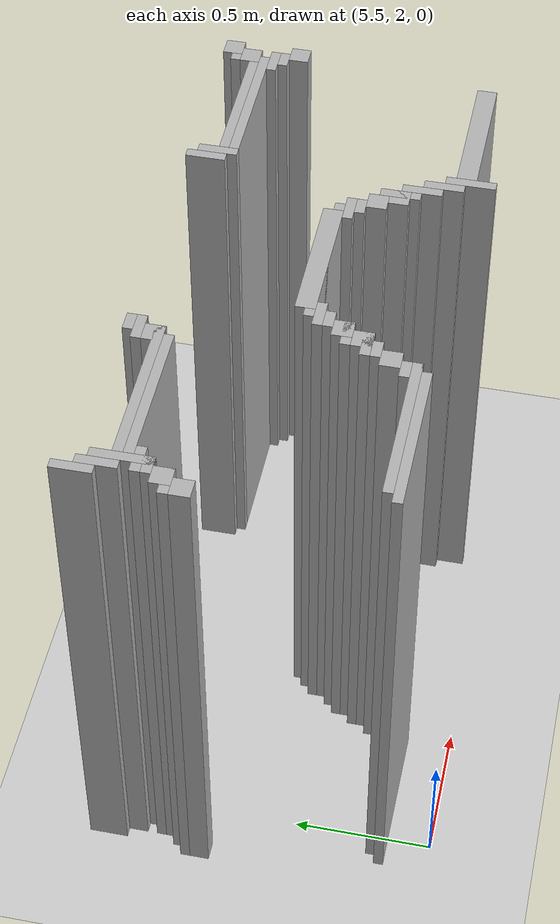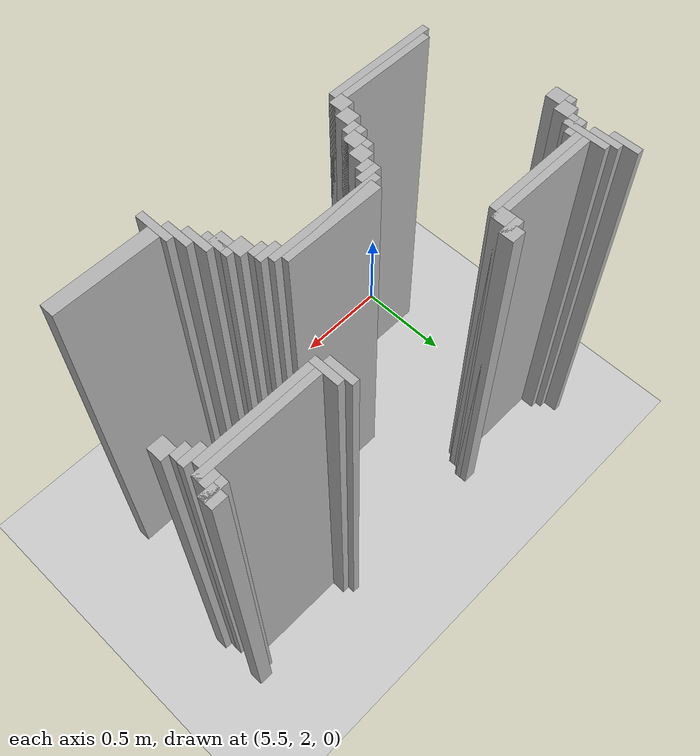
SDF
<sdf version="1.6">
 <world name="slam_world">
  <model name="ground_plane">
   <static>true</static>
   <link name="link">
    <collision name="collision">
     <geometry><plane><normal>0 0 1</normal><size>100 100</size></plane></geometry>
    </collision>
    <visual name="visual">
     <geometry><plane><normal>0 0 1</normal><size>100 100</size></plane></geometry>
     <material>
      <ambient>0.8 0.8 0.8 1</ambient>
      <diffuse>0.8 0.8 0.8 1</diffuse>
      <specular>0.8 0.8 0.8 1</specular>
     </material>
    </visual>
   </link>
  </model>
  <model name="wall_4689">
   <static>true</static>
   <pose>5.342227378190255 3.167053364269141 1.0 0 0 0</pose>
   <link name="link">
    <collision name="collision">
     <geometry><box><size>0.03480278422273782 0.13921113689095127 2.0</size></box></geometry>
    </collision>
    <visual name="visual">
     <geometry><box><size>0.03480278422273782 0.13921113689095127 2.0</size></box></geometry>
     <material><ambient>0.5 0.5 0.5 1</ambient><diffuse>0.7 0.7 0.7 1</diffuse></material>
    </visual>
   </link>
  </model>
  <model name="wall_4706">
   <static>true</static>
   <pose>5.377030162412993 3.097447795823666 1.0 0 0 0</pose>
   <link name="link">
    <collision name="collision">
     <geometry><box><size>0.03480278422273782 0.13921113689095127 2.0</size></box></geometry>
    </collision>
    <visual name="visual">
     <geometry><box><size>0.03480278422273782 0.13921113689095127 2.0</size></box></geometry>
     <material><ambient>0.5 0.5 0.5 1</ambient><diffuse>0.7 0.7 0.7 1</diffuse></material>
    </visual>
   </link>
  </model>
  <model name="wall_4707">
   <static>true</static>
   <pose>5.986078886310905 3.1322505800464038 1.0 0 0 0</pose>
   <link name="link">
    <collision name="collision">
     <geometry><box><size>0.06960556844547564 0.06960556844547564 2.0</size></box></geometry>
    </collision>
    <visual name="visual">
     <geometry><box><size>0.06960556844547564 0.06960556844547564 2.0</size></box></geometry>
     <material><ambient>0.5 0.5 0.5 1</ambient><diffuse>0.7 0.7 0.7 1</diffuse></material>
    </visual>
   </link>
  </model>
  <model name="wall_4708">
   <static>true</static>
   <pose>6.838747099767981 3.097447795823666 1.0 0 0 0</pose>
   <link name="link">
    <collision name="collision">
     <geometry><box><size>0.03480278422273782 0.13921113689095127 2.0</size></box></geometry>
    </collision>
    <visual name="visual">
     <geometry><box><size>0.03480278422273782 0.13921113689095127 2.0</size></box></geometry>
     <material><ambient>0.5 0.5 0.5 1</ambient><diffuse>0.7 0.7 0.7 1</diffuse></material>
    </visual>
   </link>
  </model>
  <model name="wall_4709">
   <static>true</static>
   <pose>7.447795823665893 3.1322505800464038 1.0 0 0 0</pose>
   <link name="link">
    <collision name="collision">
     <geometry><box><size>0.06960556844547564 0.06960556844547564 2.0</size></box></geometry>
    </collision>
    <visual name="visual">
     <geometry><box><size>0.06960556844547564 0.06960556844547564 2.0</size></box></geometry>
     <material><ambient>0.5 0.5 0.5 1</ambient><diffuse>0.7 0.7 0.7 1</diffuse></material>
    </visual>
   </link>
  </model>
  <model name="wall_4723">
   <static>true</static>
   <pose>5.41183294663573 3.02784222737819 1.0 0 0 0</pose>
   <link name="link">
    <collision name="collision">
     <geometry><box><size>0.03480278422273782 0.2088167053364269 2.0</size></box></geometry>
    </collision>
    <visual name="visual">
     <geometry><box><size>0.03480278422273782 0.2088167053364269 2.0</size></box></geometry>
     <material><ambient>0.5 0.5 0.5 1</ambient><diffuse>0.7 0.7 0.7 1</diffuse></material>
    </visual>
   </link>
  </model>
  <model name="wall_4724">
   <static>true</static>
   <pose>5.968677494199536 3.1148491879350346 1.0 0 0 0</pose>
   <link name="link">
    <collision name="collision">
     <geometry><box><size>0.10440835266821345 0.03480278422273782 2.0</size></box></geometry>
    </collision>
    <visual name="visual">
     <geometry><box><size>0.10440835266821345 0.03480278422273782 2.0</size></box></geometry>
     <material><ambient>0.5 0.5 0.5 1</ambient><diffuse>0.7 0.7 0.7 1</diffuse></material>
    </visual>
   </link>
  </model>
  <model name="wall_4725">
   <static>true</static>
   <pose>6.8735498839907185 3.062645011600928 1.0 0 0 0</pose>
   <link name="link">
    <collision name="collision">
     <geometry><box><size>0.03480278422273782 0.13921113689095127 2.0</size></box></geometry>
    </collision>
    <visual name="visual">
     <geometry><box><size>0.03480278422273782 0.13921113689095127 2.0</size></box></geometry>
     <material><ambient>0.5 0.5 0.5 1</ambient><diffuse>0.7 0.7 0.7 1</diffuse></material>
    </visual>
   </link>
  </model>
  <model name="wall_4726">
   <static>true</static>
   <pose>7.430394431554524 3.1148491879350346 1.0 0 0 0</pose>
   <link name="link">
    <collision name="collision">
     <geometry><box><size>0.10440835266821345 0.03480278422273782 2.0</size></box></geometry>
    </collision>
    <visual name="visual">
     <geometry><box><size>0.10440835266821345 0.03480278422273782 2.0</size></box></geometry>
     <material><ambient>0.5 0.5 0.5 1</ambient><diffuse>0.7 0.7 0.7 1</diffuse></material>
    </visual>
   </link>
  </model>
  <model name="wall_4737">
   <static>true</static>
   <pose>5.951276102088166 3.062645011600928 1.0 0 0 0</pose>
   <link name="link">
    <collision name="collision">
     <geometry><box><size>0.06960556844547564 0.06960556844547564 2.0</size></box></geometry>
    </collision>
    <visual name="visual">
     <geometry><box><size>0.06960556844547564 0.06960556844547564 2.0</size></box></geometry>
     <material><ambient>0.5 0.5 0.5 1</ambient><diffuse>0.7 0.7 0.7 1</diffuse></material>
    </visual>
   </link>
  </model>
  <model name="wall_4738">
   <static>true</static>
   <pose>7.412993039443156 3.062645011600928 1.0 0 0 0</pose>
   <link name="link">
    <collision name="collision">
     <geometry><box><size>0.06960556844547564 0.06960556844547564 2.0</size></box></geometry>
    </collision>
    <visual name="visual">
     <geometry><box><size>0.06960556844547564 0.06960556844547564 2.0</size></box></geometry>
     <material><ambient>0.5 0.5 0.5 1</ambient><diffuse>0.7 0.7 0.7 1</diffuse></material>
    </visual>
   </link>
  </model>
  <model name="wall_4747">
   <static>true</static>
   <pose>5.707656612529002 3.045243619489559 1.0 0 0 0</pose>
   <link name="link">
    <collision name="collision">
     <geometry><box><size>0.5568445475638051 0.03480278422273782 2.0</size></box></geometry>
    </collision>
    <visual name="visual">
     <geometry><box><size>0.5568445475638051 0.03480278422273782 2.0</size></box></geometry>
     <material><ambient>0.5 0.5 0.5 1</ambient><diffuse>0.7 0.7 0.7 1</diffuse></material>
    </visual>
   </link>
  </model>
  <model name="wall_4748">
   <static>true</static>
   <pose>7.16937354988399 3.045243619489559 1.0 0 0 0</pose>
   <link name="link">
    <collision name="collision">
     <geometry><box><size>0.5568445475638051 0.03480278422273782 2.0</size></box></geometry>
    </collision>
    <visual name="visual">
     <geometry><box><size>0.5568445475638051 0.03480278422273782 2.0</size></box></geometry>
     <material><ambient>0.5 0.5 0.5 1</ambient><diffuse>0.7 0.7 0.7 1</diffuse></material>
    </visual>
   </link>
  </model>
  <model name="wall_4758">
   <static>true</static>
   <pose>5.690255220417633 3.010440835266821 1.0 0 0 0</pose>
   <link name="link">
    <collision name="collision">
     <geometry><box><size>0.5220417633410672 0.03480278422273782 2.0</size></box></geometry>
    </collision>
    <visual name="visual">
     <geometry><box><size>0.5220417633410672 0.03480278422273782 2.0</size></box></geometry>
     <material><ambient>0.5 0.5 0.5 1</ambient><diffuse>0.7 0.7 0.7 1</diffuse></material>
    </visual>
   </link>
  </model>
  <model name="wall_4759">
   <static>true</static>
   <pose>7.151972157772621 3.010440835266821 1.0 0 0 0</pose>
   <link name="link">
    <collision name="collision">
     <geometry><box><size>0.5220417633410672 0.03480278422273782 2.0</size></box></geometry>
    </collision>
    <visual name="visual">
     <geometry><box><size>0.5220417633410672 0.03480278422273782 2.0</size></box></geometry>
     <material><ambient>0.5 0.5 0.5 1</ambient><diffuse>0.7 0.7 0.7 1</diffuse></material>
    </visual>
   </link>
  </model>
  <model name="wall_4767">
   <static>true</static>
   <pose>5.41183294663573 2.975638051044083 1.0 0 0 0</pose>
   <link name="link">
    <collision name="collision">
     <geometry><box><size>0.10440835266821345 0.03480278422273782 2.0</size></box></geometry>
    </collision>
    <visual name="visual">
     <geometry><box><size>0.10440835266821345 0.03480278422273782 2.0</size></box></geometry>
     <material><ambient>0.5 0.5 0.5 1</ambient><diffuse>0.7 0.7 0.7 1</diffuse></material>
    </visual>
   </link>
  </model>
  <model name="wall_4768">
   <static>true</static>
   <pose>7.395591647331786 2.975638051044083 1.0 0 0 0</pose>
   <link name="link">
    <collision name="collision">
     <geometry><box><size>0.10440835266821345 0.03480278422273782 2.0</size></box></geometry>
    </collision>
    <visual name="visual">
     <geometry><box><size>0.10440835266821345 0.03480278422273782 2.0</size></box></geometry>
     <material><ambient>0.5 0.5 0.5 1</ambient><diffuse>0.7 0.7 0.7 1</diffuse></material>
    </visual>
   </link>
  </model>
  <model name="wall_4778">
   <static>true</static>
   <pose>5.3944315545243615 2.9408352668213458 1.0 0 0 0</pose>
   <link name="link">
    <collision name="collision">
     <geometry><box><size>0.06960556844547564 0.03480278422273782 2.0</size></box></geometry>
    </collision>
    <visual name="visual">
     <geometry><box><size>0.06960556844547564 0.03480278422273782 2.0</size></box></geometry>
     <material><ambient>0.5 0.5 0.5 1</ambient><diffuse>0.7 0.7 0.7 1</diffuse></material>
    </visual>
   </link>
  </model>
  <model name="wall_4779">
   <static>true</static>
   <pose>7.412993039443156 2.9408352668213458 1.0 0 0 0</pose>
   <link name="link">
    <collision name="collision">
     <geometry><box><size>0.06960556844547564 0.03480278422273782 2.0</size></box></geometry>
    </collision>
    <visual name="visual">
     <geometry><box><size>0.06960556844547564 0.03480278422273782 2.0</size></box></geometry>
     <material><ambient>0.5 0.5 0.5 1</ambient><diffuse>0.7 0.7 0.7 1</diffuse></material>
    </visual>
   </link>
  </model>
  <model name="wall_4787">
   <static>true</static>
   <pose>5.359628770301624 2.8886310904872388 1.0 0 0 0</pose>
   <link name="link">
    <collision name="collision">
     <geometry><box><size>0.06960556844547564 0.06960556844547564 2.0</size></box></geometry>
    </collision>
    <visual name="visual">
     <geometry><box><size>0.06960556844547564 0.06960556844547564 2.0</size></box></geometry>
     <material><ambient>0.5 0.5 0.5 1</ambient><diffuse>0.7 0.7 0.7 1</diffuse></material>
    </visual>
   </link>
  </model>
  <model name="wall_4788">
   <static>true</static>
   <pose>7.447795823665893 2.8886310904872388 1.0 0 0 0</pose>
   <link name="link">
    <collision name="collision">
     <geometry><box><size>0.06960556844547564 0.06960556844547564 2.0</size></box></geometry>
    </collision>
    <visual name="visual">
     <geometry><box><size>0.06960556844547564 0.06960556844547564 2.0</size></box></geometry>
     <material><ambient>0.5 0.5 0.5 1</ambient><diffuse>0.7 0.7 0.7 1</diffuse></material>
    </visual>
   </link>
  </model>
  <model name="wall_4800">
   <static>true</static>
   <pose>5.342227378190255 2.87122969837587 1.0 0 0 0</pose>
   <link name="link">
    <collision name="collision">
     <geometry><box><size>0.10440835266821345 0.03480278422273782 2.0</size></box></geometry>
    </collision>
    <visual name="visual">
     <geometry><box><size>0.10440835266821345 0.03480278422273782 2.0</size></box></geometry>
     <material><ambient>0.5 0.5 0.5 1</ambient><diffuse>0.7 0.7 0.7 1</diffuse></material>
    </visual>
   </link>
  </model>
  <model name="wall_4813">
   <static>true</static>
   <pose>5.324825986078886 2.819025522041763 1.0 0 0 0</pose>
   <link name="link">
    <collision name="collision">
     <geometry><box><size>0.06960556844547564 0.06960556844547564 2.0</size></box></geometry>
    </collision>
    <visual name="visual">
     <geometry><box><size>0.06960556844547564 0.06960556844547564 2.0</size></box></geometry>
     <material><ambient>0.5 0.5 0.5 1</ambient><diffuse>0.7 0.7 0.7 1</diffuse></material>
    </visual>
   </link>
  </model>
  <model name="wall_4874">
   <static>true</static>
   <pose>6.403712296983758 2.6102088167053363 1.0 0 0 0</pose>
   <link name="link">
    <collision name="collision">
     <geometry><box><size>0.4872389791183295 0.06960556844547564 2.0</size></box></geometry>
    </collision>
    <visual name="visual">
     <geometry><box><size>0.4872389791183295 0.06960556844547564 2.0</size></box></geometry>
     <material><ambient>0.5 0.5 0.5 1</ambient><diffuse>0.7 0.7 0.7 1</diffuse></material>
    </visual>
   </link>
  </model>
  <model name="wall_4889">
   <static>true</static>
   <pose>6.403712296983758 2.5928074245939676 1.0 0 0 0</pose>
   <link name="link">
    <collision name="collision">
     <geometry><box><size>0.5568445475638051 0.03480278422273782 2.0</size></box></geometry>
    </collision>
    <visual name="visual">
     <geometry><box><size>0.5568445475638051 0.03480278422273782 2.0</size></box></geometry>
     <material><ambient>0.5 0.5 0.5 1</ambient><diffuse>0.7 0.7 0.7 1</diffuse></material>
    </visual>
   </link>
  </model>
  <model name="wall_4902">
   <static>true</static>
   <pose>6.142691415313225 2.5580046403712298 1.0 0 0 0</pose>
   <link name="link">
    <collision name="collision">
     <geometry><box><size>0.10440835266821345 0.03480278422273782 2.0</size></box></geometry>
    </collision>
    <visual name="visual">
     <geometry><box><size>0.10440835266821345 0.03480278422273782 2.0</size></box></geometry>
     <material><ambient>0.5 0.5 0.5 1</ambient><diffuse>0.7 0.7 0.7 1</diffuse></material>
    </visual>
   </link>
  </model>
  <model name="wall_4903">
   <static>true</static>
   <pose>6.664733178654292 2.5580046403712298 1.0 0 0 0</pose>
   <link name="link">
    <collision name="collision">
     <geometry><box><size>0.10440835266821345 0.03480278422273782 2.0</size></box></geometry>
    </collision>
    <visual name="visual">
     <geometry><box><size>0.10440835266821345 0.03480278422273782 2.0</size></box></geometry>
     <material><ambient>0.5 0.5 0.5 1</ambient><diffuse>0.7 0.7 0.7 1</diffuse></material>
    </visual>
   </link>
  </model>
  <model name="wall_4917">
   <static>true</static>
   <pose>6.125290023201856 2.523201856148492 1.0 0 0 0</pose>
   <link name="link">
    <collision name="collision">
     <geometry><box><size>0.06960556844547564 0.03480278422273782 2.0</size></box></geometry>
    </collision>
    <visual name="visual">
     <geometry><box><size>0.06960556844547564 0.03480278422273782 2.0</size></box></geometry>
     <material><ambient>0.5 0.5 0.5 1</ambient><diffuse>0.7 0.7 0.7 1</diffuse></material>
    </visual>
   </link>
  </model>
  <model name="wall_4918">
   <static>true</static>
   <pose>6.682134570765661 2.523201856148492 1.0 0 0 0</pose>
   <link name="link">
    <collision name="collision">
     <geometry><box><size>0.06960556844547564 0.03480278422273782 2.0</size></box></geometry>
    </collision>
    <visual name="visual">
     <geometry><box><size>0.06960556844547564 0.03480278422273782 2.0</size></box></geometry>
     <material><ambient>0.5 0.5 0.5 1</ambient><diffuse>0.7 0.7 0.7 1</diffuse></material>
    </visual>
   </link>
  </model>
  <model name="wall_4929">
   <static>true</static>
   <pose>6.090487238979118 2.470997679814385 1.0 0 0 0</pose>
   <link name="link">
    <collision name="collision">
     <geometry><box><size>0.06960556844547564 0.06960556844547564 2.0</size></box></geometry>
    </collision>
    <visual name="visual">
     <geometry><box><size>0.06960556844547564 0.06960556844547564 2.0</size></box></geometry>
     <material><ambient>0.5 0.5 0.5 1</ambient><diffuse>0.7 0.7 0.7 1</diffuse></material>
    </visual>
   </link>
  </model>
  <model name="wall_4930">
   <static>true</static>
   <pose>6.716937354988398 2.470997679814385 1.0 0 0 0</pose>
   <link name="link">
    <collision name="collision">
     <geometry><box><size>0.06960556844547564 0.06960556844547564 2.0</size></box></geometry>
    </collision>
    <visual name="visual">
     <geometry><box><size>0.06960556844547564 0.06960556844547564 2.0</size></box></geometry>
     <material><ambient>0.5 0.5 0.5 1</ambient><diffuse>0.7 0.7 0.7 1</diffuse></material>
    </visual>
   </link>
  </model>
  <model name="wall_4946">
   <static>true</static>
   <pose>6.073085846867749 2.453596287703016 1.0 0 0 0</pose>
   <link name="link">
    <collision name="collision">
     <geometry><box><size>0.10440835266821345 0.03480278422273782 2.0</size></box></geometry>
    </collision>
    <visual name="visual">
     <geometry><box><size>0.10440835266821345 0.03480278422273782 2.0</size></box></geometry>
     <material><ambient>0.5 0.5 0.5 1</ambient><diffuse>0.7 0.7 0.7 1</diffuse></material>
    </visual>
   </link>
  </model>
  <model name="wall_4947">
   <static>true</static>
   <pose>6.769141531322505 2.4013921113689096 1.0 0 0 0</pose>
   <link name="link">
    <collision name="collision">
     <geometry><box><size>0.03480278422273782 0.13921113689095127 2.0</size></box></geometry>
    </collision>
    <visual name="visual">
     <geometry><box><size>0.03480278422273782 0.13921113689095127 2.0</size></box></geometry>
     <material><ambient>0.5 0.5 0.5 1</ambient><diffuse>0.7 0.7 0.7 1</diffuse></material>
    </visual>
   </link>
  </model>
  <model name="wall_4961">
   <static>true</static>
   <pose>6.05568445475638 2.4013921113689096 1.0 0 0 0</pose>
   <link name="link">
    <collision name="collision">
     <geometry><box><size>0.06960556844547564 0.06960556844547564 2.0</size></box></geometry>
    </collision>
    <visual name="visual">
     <geometry><box><size>0.06960556844547564 0.06960556844547564 2.0</size></box></geometry>
     <material><ambient>0.5 0.5 0.5 1</ambient><diffuse>0.7 0.7 0.7 1</diffuse></material>
    </visual>
   </link>
  </model>
  <model name="wall_4962">
   <static>true</static>
   <pose>6.751740139211137 2.4013921113689096 1.0 0 0 0</pose>
   <link name="link">
    <collision name="collision">
     <geometry><box><size>0.06960556844547564 0.06960556844547564 2.0</size></box></geometry>
    </collision>
    <visual name="visual">
     <geometry><box><size>0.06960556844547564 0.06960556844547564 2.0</size></box></geometry>
     <material><ambient>0.5 0.5 0.5 1</ambient><diffuse>0.7 0.7 0.7 1</diffuse></material>
    </visual>
   </link>
  </model>
  <model name="wall_4977">
   <static>true</static>
   <pose>6.038283062645012 2.3839907192575405 1.0 0 0 0</pose>
   <link name="link">
    <collision name="collision">
     <geometry><box><size>0.10440835266821345 0.03480278422273782 2.0</size></box></geometry>
    </collision>
    <visual name="visual">
     <geometry><box><size>0.10440835266821345 0.03480278422273782 2.0</size></box></geometry>
     <material><ambient>0.5 0.5 0.5 1</ambient><diffuse>0.7 0.7 0.7 1</diffuse></material>
    </visual>
   </link>
  </model>
  <model name="wall_4978">
   <static>true</static>
   <pose>6.803944315545244 2.331786542923434 1.0 0 0 0</pose>
   <link name="link">
    <collision name="collision">
     <geometry><box><size>0.03480278422273782 0.13921113689095127 2.0</size></box></geometry>
    </collision>
    <visual name="visual">
     <geometry><box><size>0.03480278422273782 0.13921113689095127 2.0</size></box></geometry>
     <material><ambient>0.5 0.5 0.5 1</ambient><diffuse>0.7 0.7 0.7 1</diffuse></material>
    </visual>
   </link>
  </model>
  <model name="wall_4991">
   <static>true</static>
   <pose>6.020881670533642 2.3491879350348026 1.0 0 0 0</pose>
   <link name="link">
    <collision name="collision">
     <geometry><box><size>0.06960556844547564 0.03480278422273782 2.0</size></box></geometry>
    </collision>
    <visual name="visual">
     <geometry><box><size>0.06960556844547564 0.03480278422273782 2.0</size></box></geometry>
     <material><ambient>0.5 0.5 0.5 1</ambient><diffuse>0.7 0.7 0.7 1</diffuse></material>
    </visual>
   </link>
  </model>
  <model name="wall_5003">
   <static>true</static>
   <pose>5.986078886310905 2.296983758700696 1.0 0 0 0</pose>
   <link name="link">
    <collision name="collision">
     <geometry><box><size>0.06960556844547564 0.06960556844547564 2.0</size></box></geometry>
    </collision>
    <visual name="visual">
     <geometry><box><size>0.06960556844547564 0.06960556844547564 2.0</size></box></geometry>
     <material><ambient>0.5 0.5 0.5 1</ambient><diffuse>0.7 0.7 0.7 1</diffuse></material>
    </visual>
   </link>
  </model>
  <model name="wall_5004">
   <static>true</static>
   <pose>6.838747099767981 2.262180974477958 1.0 0 0 0</pose>
   <link name="link">
    <collision name="collision">
     <geometry><box><size>0.03480278422273782 0.13921113689095127 2.0</size></box></geometry>
    </collision>
    <visual name="visual">
     <geometry><box><size>0.03480278422273782 0.13921113689095127 2.0</size></box></geometry>
     <material><ambient>0.5 0.5 0.5 1</ambient><diffuse>0.7 0.7 0.7 1</diffuse></material>
    </visual>
   </link>
  </model>
  <model name="wall_5020">
   <static>true</static>
   <pose>5.951276102088166 2.2273781902552203 1.0 0 0 0</pose>
   <link name="link">
    <collision name="collision">
     <geometry><box><size>0.06960556844547564 0.06960556844547564 2.0</size></box></geometry>
    </collision>
    <visual name="visual">
     <geometry><box><size>0.06960556844547564 0.06960556844547564 2.0</size></box></geometry>
     <material><ambient>0.5 0.5 0.5 1</ambient><diffuse>0.7 0.7 0.7 1</diffuse></material>
    </visual>
   </link>
  </model>
  <model name="wall_5021">
   <static>true</static>
   <pose>6.8735498839907185 2.1751740139211138 1.0 0 0 0</pose>
   <link name="link">
    <collision name="collision">
     <geometry><box><size>0.03480278422273782 0.17401392111368907 2.0</size></box></geometry>
    </collision>
    <visual name="visual">
     <geometry><box><size>0.03480278422273782 0.17401392111368907 2.0</size></box></geometry>
     <material><ambient>0.5 0.5 0.5 1</ambient><diffuse>0.7 0.7 0.7 1</diffuse></material>
    </visual>
   </link>
  </model>
  <model name="wall_5037">
   <static>true</static>
   <pose>5.707656612529002 2.2099767981438516 1.0 0 0 0</pose>
   <link name="link">
    <collision name="collision">
     <geometry><box><size>0.5568445475638051 0.03480278422273782 2.0</size></box></geometry>
    </collision>
    <visual name="visual">
     <geometry><box><size>0.5568445475638051 0.03480278422273782 2.0</size></box></geometry>
     <material><ambient>0.5 0.5 0.5 1</ambient><diffuse>0.7 0.7 0.7 1</diffuse></material>
    </visual>
   </link>
  </model>
  <model name="wall_5038">
   <static>true</static>
   <pose>7.134570765661253 2.1925754060324825 1.0 0 0 0</pose>
   <link name="link">
    <collision name="collision">
     <geometry><box><size>0.4872389791183295 0.06960556844547564 2.0</size></box></geometry>
    </collision>
    <visual name="visual">
     <geometry><box><size>0.4872389791183295 0.06960556844547564 2.0</size></box></geometry>
     <material><ambient>0.5 0.5 0.5 1</ambient><diffuse>0.7 0.7 0.7 1</diffuse></material>
    </visual>
   </link>
  </model>
  <model name="wall_5049">
   <static>true</static>
   <pose>5.672853828306264 2.1751740139211138 1.0 0 0 0</pose>
   <link name="link">
    <collision name="collision">
     <geometry><box><size>0.5568445475638051 0.03480278422273782 2.0</size></box></geometry>
    </collision>
    <visual name="visual">
     <geometry><box><size>0.5568445475638051 0.03480278422273782 2.0</size></box></geometry>
     <material><ambient>0.5 0.5 0.5 1</ambient><diffuse>0.7 0.7 0.7 1</diffuse></material>
    </visual>
   </link>
  </model>
 </world>
</sdf>
